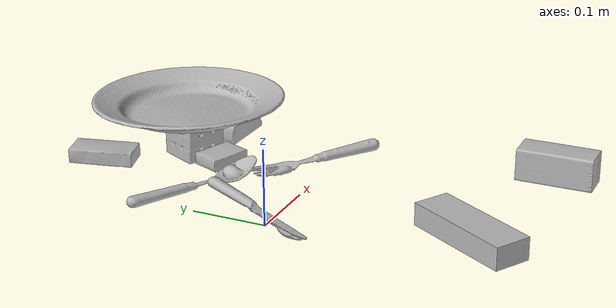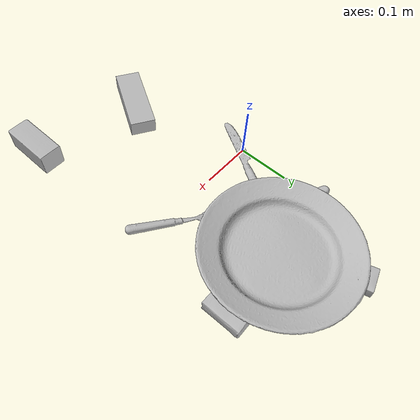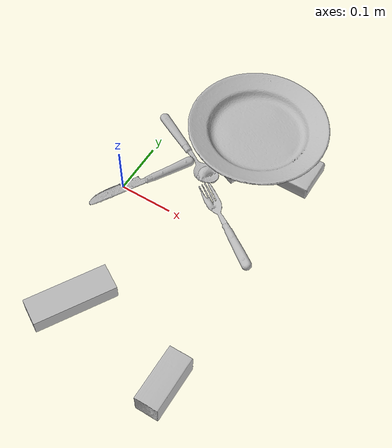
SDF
<sdf version="1.4">
  <world name="default">
    <light name="light1" type="point">
      <pose>0 0 1 0 0 0</pose>
      <diffuse>3 3 3 1</diffuse>
      <specular>3 3 3 1</specular>
    </light>
    <light name="light2" type="point">
      <pose>0 0.5 2 0 0 0</pose>
      <diffuse>1 1 1 1</diffuse>
      <specular>1 1 1 1</specular>
    </light>
    <light name="light3" type="point">
      <pose>0 0.5 2 0 0 0</pose>
      <diffuse>3 3 3 1</diffuse>
      <specular>3 3 3 1</specular>
    </light>
    <scene>
      <ambient>0.7 0.7 0.7</ambient>
    </scene>
    <model name="box11">
      <link name="link_box11">
        <collision name="default">
          <geometry>
            <mesh>
              <uri>model://jenga/collision_meshes/collision.obj</uri>
              <scale>1.0 1.0 1.0</scale>
            </mesh>
          </geometry>
          <surface>
            <friction>
              <ode>
                <mu>0.5</mu>
                <mu2>0.5</mu2>
              </ode>
            </friction>
          <contact>
        <ode>
            <max_vel>0</max_vel>
            <min_depth>0.0001</min_depth>
            <kp>1e8</kp>
        </ode>
    </contact></surface>
        </collision>
        <visual name="default">
          <geometry>
            <mesh>
              <uri>model://jenga/visual_meshes/visual.dae</uri>
              <scale>1.0 1.0 1.0</scale>
            </mesh>
          </geometry>
        </visual>
        <inertial>
          <mass>0.24099597334861755</mass>
          <pose>-2.502855807051674e-07 -0.00010250010382151231 -4.0923401684267446e-05 0.0 -7.34215461761844e-07 0.0</pose>
          <inertia>
            <ixx>6.668944e-05</ixx>
            <iyy>0.0004518858</iyy>
            <izz>0.00048242652</izz>
            <ixy>0</ixy>
            <ixz>0</ixz>
            <iyz>0</iyz>
          </inertia>
        </inertial>
      </link>
      <pose>0.06077725440263748 -0.24199004471302032 0.014999994076788425 2.295423805406341e-09 6.216911516908734e-09 -2.109208280749181</pose>
    </model>
    <model name="box12">
      <link name="link_box12">
        <collision name="default">
          <geometry>
            <mesh>
              <uri>model://wood_block/collision_meshes/collision.obj</uri>
              <scale>0.5 0.5 0.5</scale>
            </mesh>
          </geometry>
          <surface>
            <friction>
              <ode>
                <mu>0.5</mu>
                <mu2>0.5</mu2>
              </ode>
            </friction>
          <contact>
        <ode>
            <max_vel>0</max_vel>
            <min_depth>0.0001</min_depth>
            <kp>1e8</kp>
        </ode>
    </contact></surface>
        </collision>
        <visual name="default">
          <geometry>
            <mesh>
              <uri>model://wood_block/visual_meshes/visual.dae</uri>
              <scale>0.5 0.5 0.5</scale>
            </mesh>
          </geometry>
        </visual>
        <inertial>
          <mass>0.14152581989765167</mass>
          <pose>-2.9066577553749084e-06 -0.000285404734313488 0.00013204291462898254 -0.05220812938960465 -0.005192695343712196 -0.006861377662393293</pose>
          <inertia>
            <ixx>4.7345737e-05</ixx>
            <iyy>0.0001495652</iyy>
            <izz>0.00014900575</izz>
            <ixy>0</ixy>
            <ixz>0</ixz>
            <iyz>0</iyz>
          </inertia>
        </inertial>
      </link>
      <pose>0.2784086763858795 -0.28836533427238464 0.022629261016845703 -0.005208582905969722 0.0057187325398433105 -1.5673149679548315</pose>
    </model>
    <model name="box13">
      <link name="link_box13">
        <collision name="default">
          <geometry>
            <mesh>
              <uri>model://sugar_box/collision_meshes/collision.obj</uri>
              <scale>0.5 0.5 0.5</scale>
            </mesh>
          </geometry>
          <surface>
            <friction>
              <ode>
                <mu>0.5</mu>
                <mu2>0.5</mu2>
              </ode>
            </friction>
          <contact>
        <ode>
            <max_vel>0</max_vel>
            <min_depth>0.0001</min_depth>
            <kp>1e8</kp>
        </ode>
    </contact></surface>
        </collision>
        <visual name="default">
          <geometry>
            <mesh>
              <uri>model://sugar_box/visual_meshes/visual.dae</uri>
              <scale>0.5 0.5 0.5</scale>
            </mesh>
          </geometry>
        </visual>
        <inertial>
          <mass>0.08336380124092102</mass>
          <pose>0.0005171863595023751 1.924554817378521e-05 -0.00018182402709499002 -0.0004046263001201691 0.0010506636386254094 0.0026153790217303746</pose>
          <inertia>
            <ixx>1.7364619e-05</ixx>
            <iyy>5.612603e-05</iyy>
            <izz>6.718955e-05</izz>
            <ixy>0</ixy>
            <ixz>0</ixz>
            <iyz>0</iyz>
          </inertia>
        </inertial>
      </link>
      <pose>0.09469154477119446 0.29046598076820374 0.011399306356906891 0.0007752418169046787 -0.023432587443861713 1.848777315079334</pose>
    </model>
    <model name="box21">
      <link name="link_box21">
        <collision name="default">
          <geometry>
            <mesh>
              <uri>model://pudding_box/collision_meshes/collision.obj</uri>
              <scale>0.5 0.5 0.5</scale>
            </mesh>
          </geometry>
          <surface>
            <friction>
              <ode>
                <mu>0.5</mu>
                <mu2>0.5</mu2>
              </ode>
            </friction>
          <contact>
        <ode>
            <max_vel>0</max_vel>
            <min_depth>0.0001</min_depth>
            <kp>1e8</kp>
        </ode>
    </contact></surface>
        </collision>
        <visual name="default">
          <geometry>
            <mesh>
              <uri>model://pudding_box/visual_meshes/visual.dae</uri>
              <scale>0.5 0.5 0.5</scale>
            </mesh>
          </geometry>
        </visual>
        <inertial>
          <mass>0.025778822600841522</mass>
          <pose>0.00024474109522998333 0.00040339428232982755 -0.0002594413817860186 0.005213100851918505 -0.006603799640504885 0.02007982516037135</pose>
          <inertia>
            <ixx>7.285408e-06</ixx>
            <iyy>4.901674e-06</iyy>
            <izz>1.07588085e-05</izz>
            <ixy>0</ixy>
            <ixz>0</ixz>
            <iyz>0</iyz>
          </inertia>
        </inertial>
      </link>
      <pose>0.14991196990013123 0.14077681303024292 0.009862903505563736 0.02234867105791114 -0.011391690999657528 -2.0008476567300133</pose>
    </model>
    <model name="box22">
      <link name="link_box22">
        <collision name="default">
          <geometry>
            <mesh>
              <uri>model://rubiks_cube/collision_meshes/collision.obj</uri>
              <scale>1.0 1.0 1.0</scale>
            </mesh>
          </geometry>
          <surface>
            <friction>
              <ode>
                <mu>0.5</mu>
                <mu2>0.5</mu2>
              </ode>
            </friction>
          <contact>
        <ode>
            <max_vel>0</max_vel>
            <min_depth>0.0001</min_depth>
            <kp>1e8</kp>
        </ode>
    </contact></surface>
        </collision>
        <visual name="default">
          <geometry>
            <mesh>
              <uri>model://rubiks_cube/visual_meshes/visual.dae</uri>
              <scale>1.0 1.0 1.0</scale>
            </mesh>
          </geometry>
        </visual>
        <inertial>
          <mass>0.22147096693515778</mass>
          <pose>2.6721041649580002e-05 5.256967051536776e-05 -7.264316082000732e-06 -0.05467273282600652 -0.09814100107642566 -0.034457018786431724</pose>
          <inertia>
            <ixx>0.00012237758</ixx>
            <iyy>0.00012180688</iyy>
            <izz>0.00012339167</izz>
            <ixy>0</ixy>
            <ixz>0</ixz>
            <iyz>0</iyz>
          </inertia>
        </inertial>
      </link>
      <pose>0.1662074327468872 0.19049584865570068 0.02867896668612957 -9.874476430809586e-06 4.794111267616925e-06 -0.40853772583701353</pose>
    </model>
    <model name="box23">
      <link name="link_box23">
        <collision name="default">
          <geometry>
            <mesh>
              <uri>model://gelatin_box/collision_meshes/collision.obj</uri>
              <scale>1.0 1.0 1.0</scale>
            </mesh>
          </geometry>
          <surface>
            <friction>
              <ode>
                <mu>0.5</mu>
                <mu2>0.5</mu2>
              </ode>
            </friction>
          <contact>
        <ode>
            <max_vel>0</max_vel>
            <min_depth>0.0001</min_depth>
            <kp>1e8</kp>
        </ode>
    </contact></surface>
        </collision>
        <visual name="default">
          <geometry>
            <mesh>
              <uri>model://gelatin_box/visual_meshes/visual.dae</uri>
              <scale>1.0 1.0 1.0</scale>
            </mesh>
          </geometry>
        </visual>
        <inertial>
          <mass>0.20053431391716003</mass>
          <pose>0.0004319618456065655 0.00011156871914863586 -0.00036403207923285663 -0.001050372330881514 -0.004755818219920532 0.016440563197859918</pose>
          <inertia>
            <ixx>0.00014156084</ixx>
            <iyy>0.00010111618</iyy>
            <izz>0.00021548718</izz>
            <ixy>0</ixy>
            <ixz>0</ixz>
            <iyz>0</iyz>
          </inertia>
        </inertial>
      </link>
      <pose>0.25530222058296204 0.18975286185741425 0.015168316662311554 0.005596681823636323 -0.007303659356842109 1.5708403289069643</pose>
    </model>
    <model name="plate1">
      <link name="link_plate1">
        <collision name="default">
          <geometry>
            <mesh>
              <uri>model://plate/collision_meshes/collision.obj</uri>
              <scale>1.0 1.0 1.0</scale>
            </mesh>
          </geometry>
          <surface>
            <friction>
              <ode>
                <mu>0.5</mu>
                <mu2>0.5</mu2>
              </ode>
            </friction>
          <contact>
        <ode>
            <max_vel>0</max_vel>
            <min_depth>0.0001</min_depth>
            <kp>1e8</kp>
        </ode>
    </contact></surface>
        </collision>
        <visual name="default">
          <geometry>
            <mesh>
              <uri>model://plate/visual_meshes/visual.dae</uri>
              <scale>1.0 1.0 1.0</scale>
            </mesh>
          </geometry>
        </visual>
        <inertial>
          <mass>0.1705944687128067</mass>
          <pose>-0.0006044638575986028 0.0002782570372801274 -0.0010561983799561858 0.002218806973518856 -0.003225464946202784 0.4526031622217862</pose>
          <inertia>
            <ixx>0.0007980444</ixx>
            <iyy>0.0007904114</iyy>
            <izz>0.0015608557</izz>
            <ixy>0</ixy>
            <ixz>0</ixz>
            <iyz>0</iyz>
          </inertia>
        </inertial>
      </link>
      <pose>0.16943693161010742 0.1992315798997879 0.07009964436292648 -0.00730832465783381 -0.020133899975021963 -2.2578887865183748</pose>
    </model>
    <model name="silverware1">
      <link name="link_silverware1">
        <collision name="default">
          <geometry>
            <mesh>
              <uri>model://fork/collision_meshes/collision.obj</uri>
              <scale>1.0 1.0 1.0</scale>
            </mesh>
          </geometry>
          <surface>
            <friction>
              <ode>
                <mu>0.5</mu>
                <mu2>0.5</mu2>
              </ode>
            </friction>
          <contact>
        <ode>
            <max_vel>0</max_vel>
            <min_depth>0.0001</min_depth>
            <kp>1e8</kp>
        </ode>
    </contact></surface>
        </collision>
        <visual name="default">
          <geometry>
            <mesh>
              <uri>model://fork/visual_meshes/visual.dae</uri>
              <scale>1.0 1.0 1.0</scale>
            </mesh>
          </geometry>
        </visual>
        <inertial>
          <mass>0.02693658135831356</mass>
          <pose>-0.02957003191113472 0.00046588244731538 0.0003218860365450382 -0.013551533598057301 -0.010977833518912038 0.014453896181446386</pose>
          <inertia>
            <ixx>9.442797e-07</ixx>
            <iyy>7.032368e-05</iyy>
            <izz>7.074603e-05</izz>
            <ixy>0</ixy>
            <ixz>0</ixz>
            <iyz>0</iyz>
          </inertia>
        </inertial>
      </link>
      <pose>0.20548079907894135 0.02477671578526497 0.005625644698739052 -0.15070557575496416 0.029699822871168218 2.524622821701327</pose>
    </model>
    <model name="silverware2">
      <link name="link_silverware2">
        <collision name="default">
          <geometry>
            <mesh>
              <uri>model://knife/collision_meshes/collision.obj</uri>
              <scale>1.0 1.0 1.0</scale>
            </mesh>
          </geometry>
          <surface>
            <friction>
              <ode>
                <mu>0.5</mu>
                <mu2>0.5</mu2>
              </ode>
            </friction>
          <contact>
        <ode>
            <max_vel>0</max_vel>
            <min_depth>0.0001</min_depth>
            <kp>1e8</kp>
        </ode>
    </contact></surface>
        </collision>
        <visual name="default">
          <geometry>
            <mesh>
              <uri>model://knife/visual_meshes/visual.dae</uri>
              <scale>1.0 1.0 1.0</scale>
            </mesh>
          </geometry>
        </visual>
        <inertial>
          <mass>0.029087698087096214</mass>
          <pose>-0.023785242810845375 0.0015275123296305537 5.0620237743714824e-05 0.07305335090844457 0.017248415402536993 -0.007409830271159857</pose>
          <inertia>
            <ixx>8.256269e-07</ixx>
            <iyy>0.00011175022</iyy>
            <izz>0.00011201614</izz>
            <ixy>0</ixy>
            <ixz>0</ixz>
            <iyz>0</iyz>
          </inertia>
        </inertial>
      </link>
      <pose>0.024035364389419556 0.026309411972761154 0.008136838674545288 -0.28173535767807517 -0.008871816873366634 -2.106549580766505</pose>
    </model>
    <model name="silverware3">
      <link name="link_silverware3">
        <collision name="default">
          <geometry>
            <mesh>
              <uri>model://spoon/collision_meshes/collision.obj</uri>
              <scale>1.0 1.0 1.0</scale>
            </mesh>
          </geometry>
          <surface>
            <friction>
              <ode>
                <mu>0.5</mu>
                <mu2>0.5</mu2>
              </ode>
            </friction>
          <contact>
        <ode>
            <max_vel>0</max_vel>
            <min_depth>0.0001</min_depth>
            <kp>1e8</kp>
        </ode>
    </contact></surface>
        </collision>
        <visual name="default">
          <geometry>
            <mesh>
              <uri>model://spoon/visual_meshes/visual.dae</uri>
              <scale>1.0 1.0 1.0</scale>
            </mesh>
          </geometry>
        </visual>
        <inertial>
          <mass>0.04163059964776039</mass>
          <pose>-0.005526324268430471 -0.001603418029844761 -0.0007271656068041921 0.035215733596471024 -0.03906582179646946 0.006150610371924991</pose>
          <inertia>
            <ixx>2.3155617e-06</ixx>
            <iyy>0.00015840305</iyy>
            <izz>0.00015954502</izz>
            <ixy>0</ixy>
            <ixz>0</ixz>
            <iyz>0</iyz>
          </inertia>
        </inertial>
      </link>
      <pose>0.060299910604953766 0.133803591132164 0.008385265246033669 0.006731655434763369 0.02689292982897981 -0.47717390745037935</pose>
    </model>
  <physics type="ode">
      <max_contacts>50</max_contacts>
      <ode>
        <solver>
          <type>quick</type>
          <iters>75</iters>
        </solver>
        <constraints>
          <contact_max_correcting_vel>0</contact_max_correcting_vel>
          <contact_surface_layer>0</contact_surface_layer>
        </constraints>
      </ode>
    </physics></world>
</sdf>
